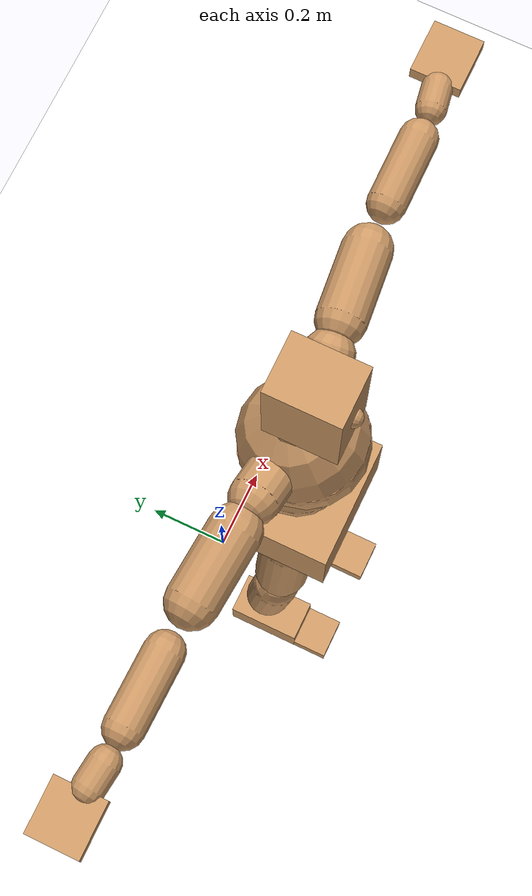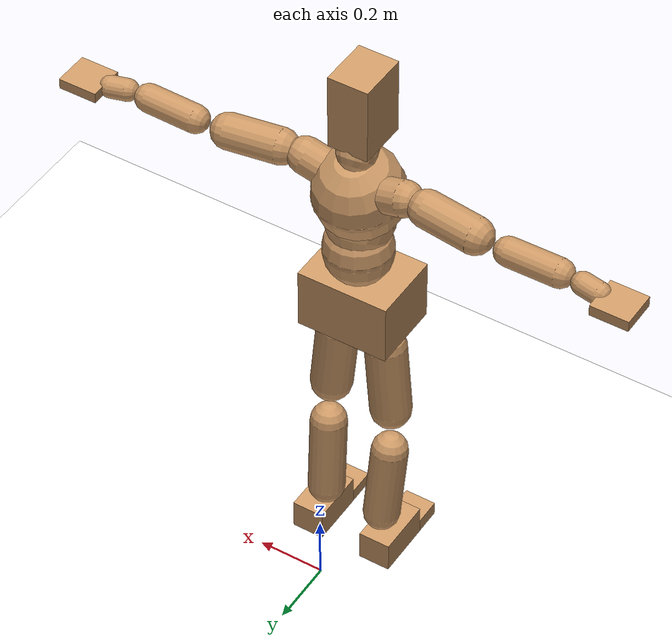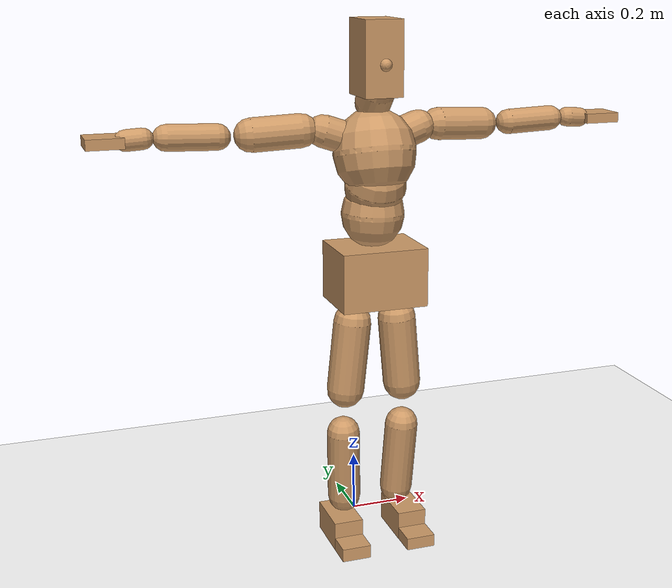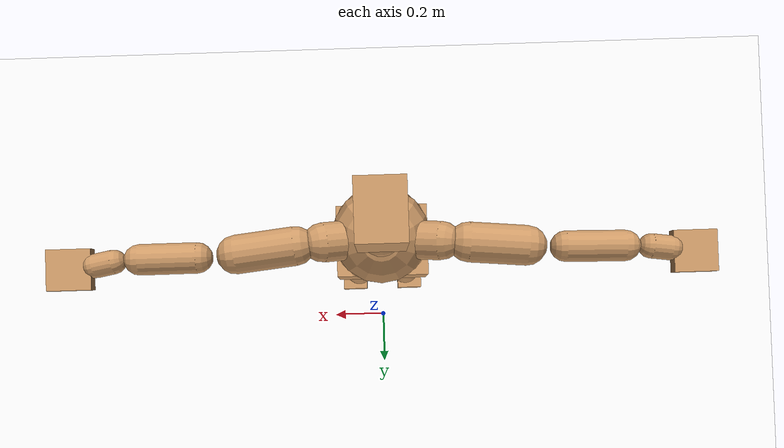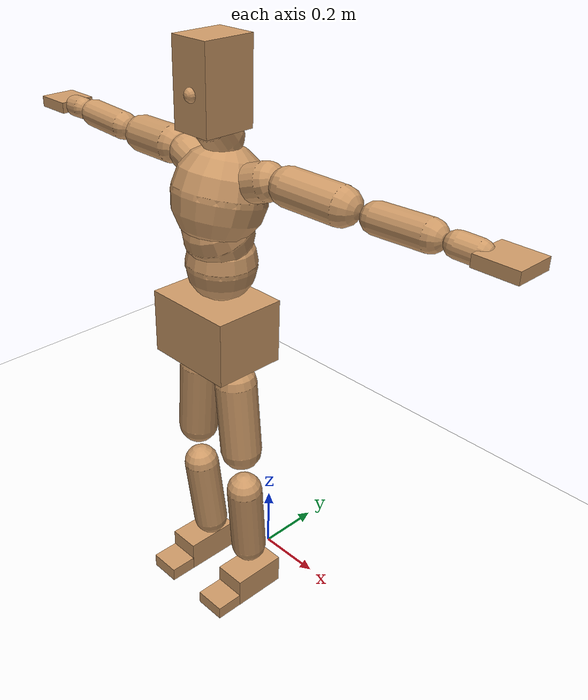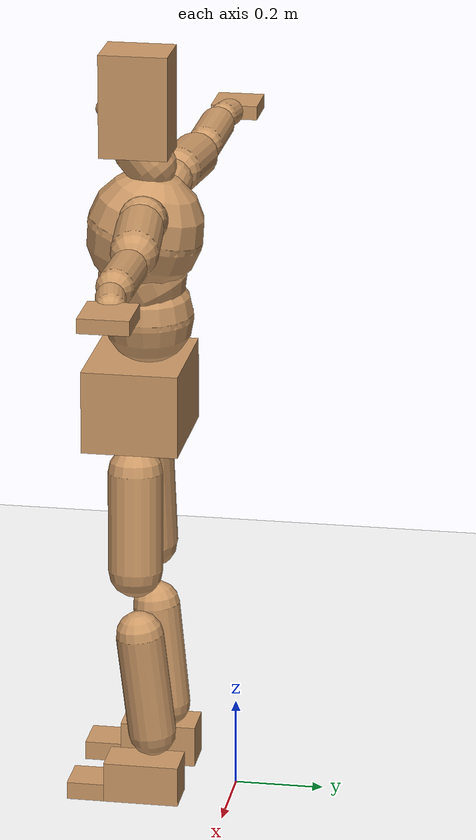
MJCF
<mujoco model="humanoid">
  <option integrator="implicitfast" />

  <visual>
    <global offwidth="1280" offheight="960" />
    <headlight active="1" ambient="0.34 0.34 0.34" diffuse="0.5 0.5 0.5" />
  </visual>

  <default>
    <joint damping="2" stiffness="2" armature="0.01" limited="true" solimplimit="0 .99 .01" />
    <geom condim="1" friction="0.7 0.005 0.0001" solimp=".99 .99 .003" solref="0.015 1" margin="0.001" rgba="0.8 0.6 .4 1" />
    <default class="smplcontact">
      <geom condim="3" friction="1. 0.005 0.0001" solref="0.015 1" solimp="0.98 0.98 0.001" priority="1" />
    </default>
    <default class="stiff_medium">
      <joint stiffness="10" />
    </default>
    <default class="stiff_medium_higher">
      <joint stiffness="50" />
    </default>
    <default class="stiff_high">
      <joint stiffness="100" />
    </default>
  </default>

  <asset>
    <texture type="skybox" builtin="gradient" rgb1="0.99 0.99 0.99" rgb2="0.608 0.828 0.892" width="100" />
    <texture builtin="flat" height="1278" mark="cross" markrgb="1 1 1" name="texgeom" random="0.01" rgb1="0.8 0.6 0.4" rgb2="0.8 0.6 0.4" type="cube" width="127" />
    <texture name="texplane" type="2d" builtin="checker" markrgb="1 1 1" rgb1="0.756 0.772 0.76" rgb2="0.6 0.6 0.6" width="100" height="100" />
    <material name="MatPlane" reflectance="0.5" texture="texplane" texrepeat="1 1" texuniform="true" />
    <material name="geom" texture="texgeom" texuniform="true" />
  </asset>

  <worldbody>
    <light name="tracking_light" pos="0 0 7" dir="0 0 -1" directional="true" cutoff="100" exponent="1" diffuse="1 1 1" specular="0.1 0.1 0.1" mode="trackcom" />
    <camera name="back" pos="0 3 2.4" xyaxes="-1 0 0 0 -1 2" mode="trackcom" />
    <camera name="side" pos="-3 0 2.4" xyaxes="0 -1 0 1 0 2" mode="trackcom" />
    <camera name="front_side" pos="-2.8 -2.8 0.8" xyaxes="0.5 -0.5 0 0.1 0.1 1" mode="trackcom" />
    <geom condim="3" name="floor" pos="0 0 0" rgba="1 1 1 1" size="100 100 .2" type="plane" material="MatPlane" />
    <body name="Pelvis" pos="-0.0018 -0.2233 0.9367" euler="90 0 0">
      <site name="Pelvis" size="0.01" />
      <freejoint name="Pelvis" />
      <geom type="box" pos="-0.0000 -0.0121 -0.0055" size="0.13897 0.09386 0.1079" quat="1.0000 0.0000 0.0000 0.0000" density="3165.830099" name="Pelvis" />
      <body name="L_Hip" pos="0.0695 -0.0914 -0.0068">
        <joint name="L_Hip_x" type="hinge" pos="0 0 0" axis="1 0 0" stiffness="10.0" range="-160.0 22.92" class="stiff_medium" damping="15.0" armature="0.01"/>
        <joint name="L_Hip_y" type="hinge" pos="0 0 0" axis="0 1 0" stiffness="10.0" range="-70.0 70.0" class="stiff_medium" damping="10.000000000000004" armature="0.010000000000000009"/>
        <joint name="L_Hip_z" type="hinge" pos="0 0 0" axis="0 0 1" stiffness="10.0" range="-28.65 90.0" class="stiff_medium" damping="9.999999999999998" armature="0.009999999999999998"/>
        <geom type="capsule" density="2040.816327" fromto="0.0069 -0.075 -0.0009 0.0274 -0.3002 -0.0036" size="0.0615" name="L_Hip" />
        <body name="L_Knee" pos="0.0343 -0.3752 -0.0045">
          <joint name="L_Knee_x" type="hinge" pos="0 0 0" axis="1 0 0" range="-5.16 171.89" damping="8.000000000000002" armature="0.010000000000000005" stiffness="2.0"/>
          <joint name="L_Knee_y" type="hinge" pos="0 0 0" axis="0 1 0" range="-4.58 6.88" damping="8.000000000000002" armature="0.010000000000000005" stiffness="2.0"/>
          <joint name="L_Knee_z" type="hinge" pos="0 0 0" axis="0 0 1" range="-6.88 4.58" damping="8.000000000000004" armature="0.010000000000000009" stiffness="2.0"/>
          <geom type="capsule" density="1234.567901" fromto="-0.0027 -0.0796 -0.0087 -0.0109 -0.3184 -0.035" size="0.0541" name="L_Knee" />
          <body name="L_Ankle" pos="-0.0136 -0.398 -0.0437">
            <joint name="L_Ankle_x" type="hinge" pos="0 0 0" axis="1 0 0" range="-45.84 45.84" class="stiff_medium" damping="6.000000000000011" armature="0.010000000000000035" stiffness="10.0"/>
            <joint name="L_Ankle_y" type="hinge" pos="0 0 0" axis="0 1 0" range="-74.48 22.92" class="stiff_medium" damping="3.0" armature="0.010000000000000002" stiffness="10.0"/>
            <joint name="L_Ankle_z" type="hinge" pos="0 0 0" axis="0 0 1" range="-4.58 4.58" class="stiff_medium" damping="6.000000000000028" armature="0.010000000000000094" stiffness="10.0"/>
            <geom type="box" pos="0.0233 -0.0239 0.0242" size="0.0483 0.0464 0.085" quat="1.0000 0.0000 0.0000 0.0000" density="449.071558" name="L_Ankle" class="smplcontact" />
            <body name="L_Toe" pos="0.0264 -0.0558 0.1193">
              <joint name="L_Toe_x" type="hinge" pos="0 0 0" axis="1 0 0" range="-91.67 22.92" armature="0.009999999999999324" damping="1.9999999999999323" stiffness="2.0"/>
              <joint name="L_Toe_y" type="hinge" pos="0 0 0" axis="0 1 0" range="-4.58 4.58" armature="0.010000000000000024" damping="2.000000000000002" stiffness="2.0"/>
              <joint name="L_Toe_z" type="hinge" pos="0 0 0" axis="0 0 1" range="-4.58 4.58" armature="0.010000000000000222" damping="2.000000000000022" stiffness="2.0"/>
              <geom type="box" pos="-0.003 0.0055 0.0248" size="0.0478 0.02 0.0496" quat="1.0000 0.0000 0.0000 0.0000" density="423.206892" name="L_Toe" class="smplcontact" />
            </body>
          </body>
        </body>
      </body>
      <body name="R_Hip" pos="-0.0677 -0.0905 -0.0043">
        <joint name="R_Hip_x" type="hinge" pos="0 0 0" axis="1 0 0" stiffness="10.0" range="-160.0 22.92" class="stiff_medium" damping="15.0" armature="0.01"/>
        <joint name="R_Hip_y" type="hinge" pos="0 0 0" axis="0 1 0" stiffness="10.0" range="-70.0 70.0" class="stiff_medium" damping="10.000000000000004" armature="0.010000000000000009"/>
        <joint name="R_Hip_z" type="hinge" pos="0 0 0" axis="0 0 1" stiffness="10.0" range="-90.0 28.65" class="stiff_medium" damping="9.999999999999998" armature="0.009999999999999998"/>
        <geom type="capsule" density="2040.816327" fromto="-0.0077 -0.0765 -0.0018 -0.0306 -0.3061 -0.0071" size="0.0606" name="R_Hip" />
        <body name="R_Knee" pos="-0.0383 -0.3826 -0.0089">
          <joint name="R_Knee_x" type="hinge" pos="0 0 0" axis="1 0 0" range="-5.16 171.89" damping="8.000000000000002" armature="0.010000000000000005" stiffness="2.0"/>
          <joint name="R_Knee_y" type="hinge" pos="0 0 0" axis="0 1 0" range="-6.88 4.58" damping="8.000000000000002" armature="0.010000000000000005" stiffness="2.0"/>
          <joint name="R_Knee_z" type="hinge" pos="0 0 0" axis="0 0 1" range="-4.58 6.88" damping="8.000000000000004" armature="0.010000000000000009" stiffness="2.0"/>
          <geom type="capsule" density="1234.567901" fromto="0.0032 -0.0797 -0.0085 0.0126 -0.3187 -0.0338" size="0.0541" name="R_Knee" />
          <body name="R_Ankle" pos="0.0158 -0.3984 -0.0423">
            <joint name="R_Ankle_x" type="hinge" pos="0 0 0" axis="1 0 0" range="-45.84 45.84" class="stiff_medium" damping="6.000000000000011" armature="0.010000000000000035" stiffness="10.0"/>
            <joint name="R_Ankle_y" type="hinge" pos="0 0 0" axis="0 1 0" range="-22.92 74.48" class="stiff_medium" damping="3.0" armature="0.010000000000000002" stiffness="10.0"/>
            <joint name="R_Ankle_z" type="hinge" pos="0 0 0" axis="0 0 1" range="-4.58 4.58" class="stiff_medium" damping="6.000000000000028" armature="0.010000000000000094" stiffness="10.0"/>
            <geom type="box" pos="-0.0212 -0.0174 0.0256" size="0.0483 0.0478 0.0865" quat="1.0000 0.0000 0.0000 0.0000" density="434.700981" name="R_Ankle" class="smplcontact" />
            <body name="R_Toe" pos="-0.0254 -0.0481 0.1233">
              <joint name="R_Toe_x" type="hinge" pos="0 0 0" axis="1 0 0" range="-91.67 22.92" armature="0.009999999999999324" damping="1.9999999999999323" stiffness="2.0"/>
              <joint name="R_Toe_y" type="hinge" pos="0 0 0" axis="0 1 0" range="-4.58 4.58" armature="0.010000000000000024" damping="2.000000000000002" stiffness="2.0"/>
              <joint name="R_Toe_z" type="hinge" pos="0 0 0" axis="0 0 1" range="-4.58 4.58" armature="0.010000000000000222" damping="2.000000000000022" stiffness="2.0"/>
              <geom type="box" pos="0.0042 0.0045 0.0227" size="0.0479 0.0216 0.0493" quat="1.0000 0.0000 0.0000 0.0000" density="407.384095" name="R_Toe" class="smplcontact" />
            </body>
          </body>
        </body>
      </body>
      <body name="Torso" pos="-0.0025 0.109 -0.0267">
        <joint name="Torso_x" type="hinge" pos="0 0 0" axis="1 0 0" range="-25.78 57.3" class="stiff_medium" damping="21.04139072920624" armature="0.013546170695719959" stiffness="14.526126444444445"/>
        <joint name="Torso_y" type="hinge" pos="0 0 0" axis="0 1 0" range="-57.3 57.3" class="stiff_high" damping="25.4254694835325" armature="0.010927821240683944" stiffness="147.89190000000002"/>
        <joint name="Torso_z" type="hinge" pos="0 0 0" axis="0 0 1" range="-34.38 34.38" class="stiff_high" damping="27.77419728380355" armature="0.012401348580556344" stiffness="155.5084976744186"/>
        <geom type="capsule" density="2040.816327" fromto="0.0025 0.0608 0.0005 0.003 0.0743 0.0006" size="0.09997" name="Torso" />
        <body name="Spine" pos="0.0055 0.1352 0.0011">
          <joint name="Spine_x" type="hinge" pos="0 0 0" axis="1 0 0" stiffness="13.740005111111113" range="-25.78 57.3" class="stiff_medium" damping="19.75706164138287" armature="0.012626276548575833"/>
          <joint name="Spine_y" type="hinge" pos="0 0 0" axis="0 1 0" stiffness="13.361457142857143" range="-57.3 57.3" class="stiff_high" damping="9.5944589816284" armature="0.010764830204091984"/>
          <joint name="Spine_z" type="hinge" pos="0 0 0" axis="0 0 1" stiffness="26.968044651162792" range="-34.38 34.38" class="stiff_high" damping="14.771952809324663" armature="0.011238125252781872"/>
          <geom type="capsule" density="2040.816327" fromto="0.0007 0.0238 0.0114 0.0008 0.0291 0.014" size="0.09815" name="Spine" />
          <body name="Chest" pos="0.0015 0.0529 0.0254">
            <joint name="Chest_x" type="hinge" pos="0 0 0" axis="1 0 0" stiffness="12.685081627906978" range="-25.78 57.3" class="stiff_medium" damping="18.658385545554474" armature="0.012197542536919513"/>
            <joint name="Chest_y" type="hinge" pos="0 0 0" axis="0 1 0" stiffness="12.297906764705882" range="-57.3 57.3" class="stiff_high" damping="9.149691371047325" armature="0.010636572877192718"/>
            <joint name="Chest_z" type="hinge" pos="0 0 0" axis="0 0 1" stiffness="26.08025906976744" range="-34.38 34.38" class="stiff_high" damping="14.257351470309054" armature="0.010825134827294596"/>
            <geom type="capsule" density="2040.816327" fromto="-0.0009 0.0682 -0.0173 -0.001 0.0833 -0.0212" size="0.13026" name="Chest" />
            <body name="Neck" pos="-0.0028 0.2139 -0.0429">
              <joint name="Neck_x" type="hinge" pos="0 0 0" axis="1 0 0" range="-28.65 57.3" class="stiff_medium_higher" damping="10.438437836393051" armature="0.01020886394393712" stiffness="53.365871590909094"/>
              <joint name="Neck_y" type="hinge" pos="0 0 0" axis="0 1 0" range="-40.11 40.11" class="stiff_medium_higher" damping="10.727292447507459" armature="0.010866808322038901" stiffness="52.94783888888889"/>
              <joint name="Neck_z" type="hinge" pos="0 0 0" axis="0 0 1" range="-40.11 40.11" class="stiff_medium_higher" damping="10.208710391894712" armature="0.010177241271499453" stiffness="51.20138409090911"/>
              <geom type="capsule" density="1000" fromto="0.001 0.013 0.0103 0.0041 0.052 0.0411" size="0.05668" name="Neck" />
              <body name="Head" pos="0.0052 0.065 0.0513">
                <joint name="Head_x" type="hinge" pos="0 0 0" axis="1 0 0" range="-28.65 57.3" class="stiff_medium_higher" damping="2.000000000000003" armature="0.010000000000000031" stiffness="50.0"/>
                <joint name="Head_y" type="hinge" pos="0 0 0" axis="0 1 0" range="-40.11 40.11" class="stiff_medium_higher" damping="1.9999999999999998" armature="0.009999999999999998" stiffness="50.0"/>
                <joint name="Head_z" type="hinge" pos="0 0 0" axis="0 0 1" range="-40.11 40.11" class="stiff_medium_higher" damping="2.0000000000000018" armature="0.010000000000000018" stiffness="50.0"/>
                <geom type="box" pos="-0.0042 0.0876 -0.0116" size="0.0606 0.1154 0.076" quat="1.0000 0.0000 0.0000 0.0000" density="1018.069894" name="Head" />
                <geom type="capsule" name="nose" size="0.02 0.01" pos="0 0.07 0.05" quat="1 0 0 0" mass="0" contype="0" conaffinity="0" />
              </body>
            </body>
            <body name="L_Thorax" pos="0.0788 0.1217 -0.0341">
              <joint name="L_Thorax_x" type="hinge" pos="0 0 0" axis="1 0 0" range="-10.89 4.58" class="stiff_medium_higher" damping="20.00000000000011" armature="0.010000000000000111" stiffness="50.0"/>
              <joint name="L_Thorax_y" type="hinge" pos="0 0 0" axis="0 1 0" range="-28.65 17.19" class="stiff_medium_higher" damping="20.0" armature="0.010000000000000002" stiffness="50.0"/>
              <joint name="L_Thorax_z" type="hinge" pos="0 0 0" axis="0 0 1" range="-31.51 40.11" class="stiff_medium_higher" damping="20.0" armature="0.01" stiffness="50.0"/>
              <geom type="capsule" density="1000" fromto="0.0182 0.0061 -0.0018 0.0728 0.0244 -0.0071" size="0.0521" name="L_Thorax" />
              <body name="L_Shoulder" pos="0.091 0.0305 -0.0089">
                <joint name="L_Shoulder_x" type="hinge" pos="0 0 0" axis="1 0 0" range="-97.4 97.4" class="stiff_medium" damping="6.000000000000077" armature="0.010000000000000257" stiffness="10.0"/>
                <joint name="L_Shoulder_y" type="hinge" pos="0 0 0" axis="0 1 0" range="-108.86 80.21" class="stiff_medium" damping="6.0" armature="0.01" stiffness="10.0"/>
                <joint name="L_Shoulder_z" type="hinge" pos="0 0 0" axis="0 0 1" range="-97.4 85.94" class="stiff_medium" damping="6.000000000000002" armature="0.010000000000000005" stiffness="10.0"/>
                <geom type="capsule" density="1000" fromto="0.0519 -0.0026 -0.0055 0.2077 -0.0102 -0.022" size="0.0517" name="L_Shoulder" />
                <body name="L_Elbow" pos="0.2596 -0.0128 -0.0275">
                  <joint name="L_Elbow_x" type="hinge" pos="0 0 0" axis="1 0 0" range="-17.19 4.58" damping="4.999999999999979" armature="0.009999999999999917" stiffness="2.0"/>
                  <joint name="L_Elbow_y" type="hinge" pos="0 0 0" axis="0 1 0" range="-180.0 17.19" damping="5.000000000000005" armature="0.010000000000000023" stiffness="2.0"/>
                  <joint name="L_Elbow_z" type="hinge" pos="0 0 0" axis="0 0 1" range="-100.84 4.58" damping="5.0" armature="0.010000000000000002" stiffness="2.0"/>
                  <geom type="capsule" density="1000" fromto="0.0498 0.0018 -0.0002 0.1994 0.0072 -0.0009" size="0.0405" name="L_Elbow" />
                  <body name="L_Wrist" pos="0.2492 0.009 -0.0012">
                    <joint name="L_Wrist_x" type="hinge" pos="0 0 0" axis="1 0 0" range="-180.0 22.92" armature="0.009999999999999681" damping="1.999999999999968" stiffness="2.0"/>
                    <joint name="L_Wrist_y" type="hinge" pos="0 0 0" axis="0 1 0" range="-17.19 17.19" armature="0.009999999999999924" damping="1.9999999999999925" stiffness="2.0"/>
                    <joint name="L_Wrist_z" type="hinge" pos="0 0 0" axis="0 0 1" range="-22.92 22.92" armature="0.009999999999999915" damping="1.9999999999999916" stiffness="2.0"/>
                    <geom type="capsule" density="1000" fromto="0.0168 -0.0016 -0.003 0.0672 -0.0065 -0.012" size="0.0318" name="L_Wrist" class="smplcontact" />
                    <body name="L_Hand" pos="0.084 -0.0082 -0.0149">
                      <joint name="L_Hand_x" type="hinge" pos="0 0 0" axis="1 0 0" range="-17.19 17.19" armature="0.009999999999999863" damping="1.9999999999999862" stiffness="2.0"/>
                      <joint name="L_Hand_y" type="hinge" pos="0 0 0" axis="0 1 0" range="-51.57 51.57" armature="0.010000000000000217" damping="2.0000000000000218" stiffness="2.0"/>
                      <joint name="L_Hand_z" type="hinge" pos="0 0 0" axis="0 0 1" range="-91.67 91.67" armature="0.010000000000000262" damping="2.000000000000026" stiffness="2.0"/>
                      <geom type="box" pos="0.0493 0.001 -0.0058" size="0.0585 0.0158 0.0538" quat="1.0000 0.0000 0.0000 0.0000" density="400.552564" name="L_Hand" class="smplcontact" />
                    </body>
                  </body>
                </body>
              </body>
            </body>
            <body name="R_Thorax" pos="-0.0818 0.1188 -0.0386">
              <joint name="R_Thorax_x" type="hinge" pos="0 0 0" axis="1 0 0" range="-10.89 4.58" class="stiff_medium_higher" damping="20.00000000000011" armature="0.010000000000000111" stiffness="50.0"/>
              <joint name="R_Thorax_y" type="hinge" pos="0 0 0" axis="0 1 0" range="-17.19 28.65" class="stiff_medium_higher" damping="20.0" armature="0.010000000000000002" stiffness="50.0"/>
              <joint name="R_Thorax_z" type="hinge" pos="0 0 0" axis="0 0 1" range="-40.11 31.51" class="stiff_medium_higher" damping="20.0" armature="0.01" stiffness="50.0"/>
              <geom type="capsule" density="1000" fromto="-0.0192 0.0065 -0.0018 -0.0768 0.026 -0.0073" size="0.0511" name="R_Thorax" />
              <body name="R_Shoulder" pos="-0.096 0.0326 -0.0091">
                <joint name="R_Shoulder_x" type="hinge" pos="0 0 0" axis="1 0 0" range="-97.4 97.4" class="stiff_medium" damping="6.000000000000077" armature="0.010000000000000257" stiffness="10.0"/>
                <joint name="R_Shoulder_y" type="hinge" pos="0 0 0" axis="0 1 0" range="-80.21 108.86" class="stiff_medium" damping="6.0" armature="0.01" stiffness="10.0"/>
                <joint name="R_Shoulder_z" type="hinge" pos="0 0 0" axis="0 0 1" range="-85.94 97.4" class="stiff_medium" damping="6.000000000000002" armature="0.010000000000000005" stiffness="10.0"/>
                <geom type="capsule" density="1000" fromto="-0.0507 -0.0027 -0.0043 -0.203 -0.0107 -0.0171" size="0.0531" name="R_Shoulder" />
                <body name="R_Elbow" pos="-0.2537 -0.0133 -0.0214">
                  <joint name="R_Elbow_x" type="hinge" pos="0 0 0" axis="1 0 0" range="-17.19 4.58" damping="4.999999999999979" armature="0.009999999999999917" stiffness="2.0"/>
                  <joint name="R_Elbow_y" type="hinge" pos="0 0 0" axis="0 1 0" range="-17.19 180.0" damping="5.000000000000005" armature="0.010000000000000023" stiffness="2.0"/>
                  <joint name="R_Elbow_z" type="hinge" pos="0 0 0" axis="0 0 1" range="-4.58 100.84" damping="5.0" armature="0.010000000000000002" stiffness="2.0"/>
                  <geom type="capsule" density="1000" fromto="-0.0511 0.0016 -0.0011 -0.2042 0.0062 -0.0044" size="0.0408" name="R_Elbow" />
                  <body name="R_Wrist" pos="-0.2553 0.0078 -0.0056">
                    <joint name="R_Wrist_x" type="hinge" pos="0 0 0" axis="1 0 0" range="-180.0 22.92" armature="0.009999999999999681" damping="1.999999999999968" stiffness="2.0"/>
                    <joint name="R_Wrist_y" type="hinge" pos="0 0 0" axis="0 1 0" range="-17.19 17.19" armature="0.009999999999999924" damping="1.9999999999999925" stiffness="2.0"/>
                    <joint name="R_Wrist_z" type="hinge" pos="0 0 0" axis="0 0 1" range="-22.92 22.92" armature="0.009999999999999915" damping="1.9999999999999916" stiffness="2.0"/>
                    <geom type="capsule" density="1000" fromto="-0.0169 -0.0012 -0.0021 -0.0677 -0.0049 -0.0083" size="0.0326" name="R_Wrist" class="smplcontact" />
                    <body name="R_Hand" pos="-0.0846 -0.0061 -0.0103">
                      <joint name="R_Hand_x" type="hinge" pos="0 0 0" axis="1 0 0" range="-17.19 17.19" armature="0.009999999999999863" damping="1.9999999999999862" stiffness="2.0"/>
                      <joint name="R_Hand_y" type="hinge" pos="0 0 0" axis="0 1 0" range="-51.57 51.57" armature="0.010000000000000217" damping="2.0000000000000218" stiffness="2.0"/>
                      <joint name="R_Hand_z" type="hinge" pos="0 0 0" axis="0 0 1" range="-91.67 91.67" armature="0.010000000000000262" damping="2.000000000000026" stiffness="2.0"/>
                      <geom type="box" pos="-0.0462 -0.0009 -0.0079" size="0.0569 0.0164 0.0546" quat="1.0000 0.0000 0.0000 0.0000" density="403.679611" name="R_Hand" class="smplcontact" />
                    </body>
                  </body>
                </body>
              </body>
            </body>
          </body>
        </body>
      </body>
    </body>
  </worldbody>
  <actuator>
    <general name="L_Hip_x" joint="L_Hip_x" biastype="affine" gainprm="287.33006409732246" biasprm="-215.3247604770444 -180.0 -2.0" ctrllimited="true" ctrlrange="-1 1" forcerange="-360.0 360.0" />
    <general name="L_Hip_y" joint="L_Hip_y" biastype="affine" gainprm="219.9114857512855" biasprm="0.0 -180.0 -2.000000000000001" ctrllimited="true" ctrlrange="-1 1" forcerange="-360.0 360.0" />
    <general name="L_Hip_z" joint="L_Hip_z" biastype="affine" gainprm="186.3749841742145" biasprm="96.3683546488669 -180.0 -1.9999999999999998" ctrllimited="true" ctrlrange="-1 1" forcerange="-360.0 360.0" />
    <general name="L_Knee_x" joint="L_Knee_x" biastype="affine" gainprm="278.10948965903646" biasprm="261.8988715665131 -180.0 -2.0000000000000004" ctrllimited="true" ctrlrange="-1 1" forcerange="-360.0 360.0" />
    <general name="L_Knee_y" joint="L_Knee_y" biastype="affine" gainprm="18.001325905069514" biasprm="3.612831551628262 -180.0 -2.0000000000000004" ctrllimited="true" ctrlrange="-1 1" forcerange="-360.0 360.0" />
    <general name="L_Knee_z" joint="L_Knee_z" biastype="affine" gainprm="18.001325905069514" biasprm="-3.612831551628262 -180.0 -2.000000000000001" ctrllimited="true" ctrlrange="-1 1" forcerange="-360.0 360.0" />
    <general name="L_Ankle_x" joint="L_Ankle_x" biastype="affine" gainprm="72.00530362027807" biasprm="0.0 -90.0 -2.0000000000000036" ctrllimited="true" ctrlrange="-1 1" forcerange="-180.0 180.0" />
    <general name="L_Ankle_y" joint="L_Ankle_y" biastype="affine" gainprm="76.49778111491148" biasprm="-40.49512930477244 -90.0 -2.0" ctrllimited="true" ctrlrange="-1 1" forcerange="-180.0 180.0" />
    <general name="L_Ankle_z" joint="L_Ankle_z" biastype="affine" gainprm="7.1942471767206255" biasprm="0.0 -90.0 -2.0000000000000093" ctrllimited="true" ctrlrange="-1 1" forcerange="-180.0 180.0" />
    <general name="L_Toe_x" joint="L_Toe_x" biastype="affine" gainprm="71.99902043497087" biasprm="-43.19689898685965 -72.0 -0.799999999999973" ctrllimited="true" ctrlrange="-1 1" forcerange="-144.0 144.0" />
    <general name="L_Toe_y" joint="L_Toe_y" biastype="affine" gainprm="5.755397741376501" biasprm="0.0 -72.0 -0.8000000000000009" ctrllimited="true" ctrlrange="-1 1" forcerange="-144.0 144.0" />
    <general name="L_Toe_z" joint="L_Toe_z" biastype="affine" gainprm="5.755397741376501" biasprm="0.0 -72.0 -0.8000000000000089" ctrllimited="true" ctrlrange="-1 1" forcerange="-144.0 144.0" />
    <general name="R_Hip_x" joint="R_Hip_x" biastype="affine" gainprm="287.33006409732246" biasprm="-215.3247604770444 -180.0 -2.0" ctrllimited="true" ctrlrange="-1 1" forcerange="-360.0 360.0" />
    <general name="R_Hip_y" joint="R_Hip_y" biastype="affine" gainprm="219.9114857512855" biasprm="0.0 -180.0 -2.000000000000001" ctrllimited="true" ctrlrange="-1 1" forcerange="-360.0 360.0" />
    <general name="R_Hip_z" joint="R_Hip_z" biastype="affine" gainprm="186.3749841742145" biasprm="-96.3683546488669 -180.0 -1.9999999999999998" ctrllimited="true" ctrlrange="-1 1" forcerange="-360.0 360.0" />
    <general name="R_Knee_x" joint="R_Knee_x" biastype="affine" gainprm="278.10948965903646" biasprm="261.8988715665131 -180.0 -2.0000000000000004" ctrllimited="true" ctrlrange="-1 1" forcerange="-360.0 360.0" />
    <general name="R_Knee_y" joint="R_Knee_y" biastype="affine" gainprm="18.001325905069514" biasprm="-3.612831551628262 -180.0 -2.0000000000000004" ctrllimited="true" ctrlrange="-1 1" forcerange="-360.0 360.0" />
    <general name="R_Knee_z" joint="R_Knee_z" biastype="affine" gainprm="18.001325905069514" biasprm="3.612831551628262 -180.0 -2.000000000000001" ctrllimited="true" ctrlrange="-1 1" forcerange="-360.0 360.0" />
    <general name="R_Ankle_x" joint="R_Ankle_x" biastype="affine" gainprm="72.00530362027807" biasprm="0.0 -90.0 -2.0000000000000036" ctrllimited="true" ctrlrange="-1 1" forcerange="-180.0 180.0" />
    <general name="R_Ankle_y" joint="R_Ankle_y" biastype="affine" gainprm="76.49778111491148" biasprm="40.49512930477244 -90.0 -2.0" ctrllimited="true" ctrlrange="-1 1" forcerange="-180.0 180.0" />
    <general name="R_Ankle_z" joint="R_Ankle_z" biastype="affine" gainprm="7.1942471767206255" biasprm="0.0 -90.0 -2.0000000000000093" ctrllimited="true" ctrlrange="-1 1" forcerange="-180.0 180.0" />
    <general name="R_Toe_x" joint="R_Toe_x" biastype="affine" gainprm="71.99902043497087" biasprm="-43.19689898685965 -72.0 -0.799999999999973" ctrllimited="true" ctrlrange="-1 1" forcerange="-144.0 144.0" />
    <general name="R_Toe_y" joint="R_Toe_y" biastype="affine" gainprm="5.755397741376501" biasprm="0.0 -72.0 -0.8000000000000009" ctrllimited="true" ctrlrange="-1 1" forcerange="-144.0 144.0" />
    <general name="R_Toe_z" joint="R_Toe_z" biastype="affine" gainprm="5.755397741376501" biasprm="0.0 -72.0 -0.8000000000000089" ctrllimited="true" ctrlrange="-1 1" forcerange="-144.0 144.0" />
    <general name="Torso_x" joint="Torso_x" biastype="affine" gainprm="252.75800666516236" biasprm="95.89470835442845 -348.6270346666667 -5.61103752778833" ctrllimited="true" ctrlrange="-1 1" forcerange="-522.940552 522.940552" />
    <general name="Torso_y" joint="Torso_y" biastype="affine" gainprm="354.9667054159934" biasprm="0.0 -354.94056 -5.0850938967065" ctrllimited="true" ctrlrange="-1 1" forcerange="-532.41084 532.41084" />
    <general name="Torso_z" joint="Torso_z" biastype="affine" gainprm="223.94873181159636" biasprm="0.0 -373.22039441860466 -5.55483945676071" ctrllimited="true" ctrlrange="-1 1" forcerange="-559.830591627907 559.830591627907" />
    <general name="Spine_x" joint="Spine_x" biastype="affine" gainprm="239.07931111131185" biasprm="90.70510214526418 -329.7601226666667 -5.268549771035431" ctrllimited="true" ctrlrange="-1 1" forcerange="-494.6401840000001 494.6401840000001" />
    <general name="Spine_y" joint="Spine_y" biastype="affine" gainprm="320.6985927935872" biasprm="0.0 -320.67497142857144 -4.7972294908142" ctrllimited="true" ctrlrange="-1 1" forcerange="-481.01245714285716 481.01245714285716" />
    <general name="Spine_z" joint="Spine_z" biastype="affine" gainprm="194.18422431521927" biasprm="0.0 -323.6165358139535 -4.923984269774888" ctrllimited="true" ctrlrange="-1 1" forcerange="-485.42480372093024 485.42480372093024" />
    <general name="Chest_x" joint="Chest_x" biastype="affine" gainprm="220.72339511273367" biasprm="83.74098957575065 -304.44195906976745 -4.975569478814526" ctrllimited="true" ctrlrange="-1 1" forcerange="-456.6629386046512 456.6629386046512" />
    <general name="Chest_y" joint="Chest_y" biastype="affine" gainprm="295.17150349550616" biasprm="0.0 -295.14976235294114 -4.5748456855236626" ctrllimited="true" ctrlrange="-1 1" forcerange="-442.7246435294117 442.7246435294117" />
    <general name="Chest_z" joint="Chest_z" biastype="affine" gainprm="187.79169728141153" biasprm="0.0 -312.9631088372093 -4.752450490103018" ctrllimited="true" ctrlrange="-1 1" forcerange="-469.4446632558139 469.4446632558139" />
    <general name="Neck_x" joint="Neck_x" biastype="affine" gainprm="28.819693401481356" biasprm="9.606564467160451 -38.42342754545455 -0.8350750269114441" ctrllimited="true" ctrlrange="-1 1" forcerange="-76.8468550909091 76.8468550909091" />
    <general name="Neck_y" joint="Neck_y" biastype="affine" gainprm="26.687676506624072" biasprm="0.0 -38.122444 -0.8581833958005968" ctrllimited="true" ctrlrange="-1 1" forcerange="-76.244888 76.244888" />
    <general name="Neck_z" joint="Neck_z" biastype="affine" gainprm="25.807398450710693" biasprm="0.0 -36.86499654545456 -0.8166968313515771" ctrllimited="true" ctrlrange="-1 1" forcerange="-73.72999309090912 73.72999309090912" />
    <general name="Head_x" joint="Head_x" biastype="affine" gainprm="18.001325905069514" biasprm="6.000441968356505 -24.0 -0.8000000000000013" ctrllimited="true" ctrlrange="-1 1" forcerange="-48.0 48.0" />
    <general name="Head_y" joint="Head_y" biastype="affine" gainprm="16.801237511398213" biasprm="0.0 -24.0 -0.7999999999999999" ctrllimited="true" ctrlrange="-1 1" forcerange="-48.0 48.0" />
    <general name="Head_z" joint="Head_z" biastype="affine" gainprm="16.801237511398213" biasprm="0.0 -24.0 -0.8000000000000007" ctrllimited="true" ctrlrange="-1 1" forcerange="-48.0 48.0" />
    <general name="L_Thorax_x" joint="L_Thorax_x" biastype="affine" gainprm="16.200146117011364" biasprm="-6.6078165480505335 -120.0 -1.600000000000009" ctrllimited="true" ctrlrange="-1 1" forcerange="-240.0 240.0" />
    <general name="L_Thorax_y" joint="L_Thorax_y" biastype="affine" gainprm="48.00353574685204" biasprm="-12.00088393671301 -120.0 -1.6" ctrllimited="true" ctrlrange="-1 1" forcerange="-240.0 240.0" />
    <general name="L_Thorax_z" joint="L_Thorax_z" biastype="affine" gainprm="75.00028861670033" biasprm="9.00589894029074 -120.0 -1.6" ctrllimited="true" ctrlrange="-1 1" forcerange="-240.0 240.0" />
    <general name="L_Shoulder_x" joint="L_Shoulder_x" biastype="affine" gainprm="81.5976331892389" biasprm="0.0 -48.0 -1.6000000000000207" ctrllimited="true" ctrlrange="-1 1" forcerange="-96.0 96.0" />
    <general name="L_Shoulder_y" joint="L_Shoulder_y" biastype="affine" gainprm="79.19745640189629" biasprm="-12.00088393671301 -48.0 -1.6" ctrllimited="true" ctrlrange="-1 1" forcerange="-96.0 96.0" />
    <general name="L_Shoulder_z" joint="L_Shoulder_z" biastype="affine" gainprm="76.79727961455369" biasprm="-4.800353574685214 -48.0 -1.6000000000000005" ctrllimited="true" ctrlrange="-1 1" forcerange="-96.0 96.0" />
    <general name="L_Elbow_x" joint="L_Elbow_x" biastype="affine" gainprm="13.67849441372996" biasprm="-7.923096672353461 -72.0 -0.7999999999999967" ctrllimited="true" ctrlrange="-1 1" forcerange="-144.0 144.0" />
    <general name="L_Elbow_y" joint="L_Elbow_y" biastype="affine" gainprm="123.89813107227425" biasprm="-102.29653998619085 -72.0 -0.8000000000000009" ctrllimited="true" ctrlrange="-1 1" forcerange="-144.0 144.0" />
    <general name="L_Elbow_z" joint="L_Elbow_z" biastype="affine" gainprm="66.23733950828719" biasprm="-60.4819417669107 -72.0 -0.8" ctrllimited="true" ctrlrange="-1 1" forcerange="-144.0 144.0" />
    <general name="L_Wrist_x" joint="L_Wrist_x" biastype="affine" gainprm="21.24973270888136" biasprm="-16.449379134196157 -12.0 -0.7999999999999873" ctrllimited="true" ctrlrange="-1 1" forcerange="-24.0 24.0" />
    <general name="L_Wrist_y" joint="L_Wrist_y" biastype="affine" gainprm="3.6002651810139037" biasprm="0.0 -12.0 -0.799999999999997" ctrllimited="true" ctrlrange="-1 1" forcerange="-24.0 24.0" />
    <general name="L_Wrist_z" joint="L_Wrist_z" biastype="affine" gainprm="4.800353574685205" biasprm="0.0 -12.0 -0.7999999999999967" ctrllimited="true" ctrlrange="-1 1" forcerange="-24.0 24.0" />
    <general name="L_Hand_x" joint="L_Hand_x" biastype="affine" gainprm="3.6002651810139037" biasprm="0.0 -12.0 -0.7999999999999945" ctrllimited="true" ctrlrange="-1 1" forcerange="-24.0 24.0" />
    <general name="L_Hand_y" joint="L_Hand_y" biastype="affine" gainprm="10.800795543041708" biasprm="0.0 -12.0 -0.8000000000000087" ctrllimited="true" ctrlrange="-1 1" forcerange="-24.0 24.0" />
    <general name="L_Hand_z" joint="L_Hand_z" biastype="affine" gainprm="19.199319903638422" biasprm="0.0 -12.0 -0.8000000000000105" ctrllimited="true" ctrlrange="-1 1" forcerange="-24.0 24.0" />
    <general name="R_Thorax_x" joint="R_Thorax_x" biastype="affine" gainprm="16.200146117011364" biasprm="-6.6078165480505335 -120.0 -1.600000000000009" ctrllimited="true" ctrlrange="-1 1" forcerange="-240.0 240.0" />
    <general name="R_Thorax_y" joint="R_Thorax_y" biastype="affine" gainprm="48.00353574685204" biasprm="12.000883936713002 -120.0 -1.6" ctrllimited="true" ctrlrange="-1 1" forcerange="-240.0 240.0" />
    <general name="R_Thorax_z" joint="R_Thorax_z" biastype="affine" gainprm="75.00028861670033" biasprm="-9.00589894029074 -120.0 -1.6" ctrllimited="true" ctrlrange="-1 1" forcerange="-240.0 240.0" />
    <general name="R_Shoulder_x" joint="R_Shoulder_x" biastype="affine" gainprm="81.5976331892389" biasprm="0.0 -48.0 -1.6000000000000207" ctrllimited="true" ctrlrange="-1 1" forcerange="-96.0 96.0" />
    <general name="R_Shoulder_y" joint="R_Shoulder_y" biastype="affine" gainprm="79.19745640189629" biasprm="12.00088393671301 -48.0 -1.6" ctrllimited="true" ctrlrange="-1 1" forcerange="-96.0 96.0" />
    <general name="R_Shoulder_z" joint="R_Shoulder_z" biastype="affine" gainprm="76.79727961455369" biasprm="4.800353574685204 -48.0 -1.6000000000000005" ctrllimited="true" ctrlrange="-1 1" forcerange="-96.0 96.0" />
    <general name="R_Elbow_x" joint="R_Elbow_x" biastype="affine" gainprm="13.67849441372996" biasprm="-7.923096672353461 -72.0 -0.7999999999999967" ctrllimited="true" ctrlrange="-1 1" forcerange="-144.0 144.0" />
    <general name="R_Elbow_y" joint="R_Elbow_y" biastype="affine" gainprm="123.89813107227425" biasprm="102.29653998619085 -72.0 -0.8000000000000009" ctrllimited="true" ctrlrange="-1 1" forcerange="-144.0 144.0" />
    <general name="R_Elbow_z" joint="R_Elbow_z" biastype="affine" gainprm="66.23733950828719" biasprm="60.481941766910694 -72.0 -0.8" ctrllimited="true" ctrlrange="-1 1" forcerange="-144.0 144.0" />
    <general name="R_Wrist_x" joint="R_Wrist_x" biastype="affine" gainprm="21.24973270888136" biasprm="-16.449379134196157 -12.0 -0.7999999999999873" ctrllimited="true" ctrlrange="-1 1" forcerange="-24.0 24.0" />
    <general name="R_Wrist_y" joint="R_Wrist_y" biastype="affine" gainprm="3.6002651810139037" biasprm="0.0 -12.0 -0.799999999999997" ctrllimited="true" ctrlrange="-1 1" forcerange="-24.0 24.0" />
    <general name="R_Wrist_z" joint="R_Wrist_z" biastype="affine" gainprm="4.800353574685205" biasprm="0.0 -12.0 -0.7999999999999967" ctrllimited="true" ctrlrange="-1 1" forcerange="-24.0 24.0" />
    <general name="R_Hand_x" joint="R_Hand_x" biastype="affine" gainprm="3.6002651810139037" biasprm="0.0 -12.0 -0.7999999999999945" ctrllimited="true" ctrlrange="-1 1" forcerange="-24.0 24.0" />
    <general name="R_Hand_y" joint="R_Hand_y" biastype="affine" gainprm="10.800795543041708" biasprm="0.0 -12.0 -0.8000000000000087" ctrllimited="true" ctrlrange="-1 1" forcerange="-24.0 24.0" />
    <general name="R_Hand_z" joint="R_Hand_z" biastype="affine" gainprm="19.199319903638422" biasprm="0.0 -12.0 -0.8000000000000105" ctrllimited="true" ctrlrange="-1 1" forcerange="-24.0 24.0" />
  </actuator>
  <contact>
    <exclude body1="Torso" body2="Chest" />
    <exclude body1="Head" body2="Chest" />
    <exclude body1="R_Knee" body2="R_Toe" />
    <exclude body1="R_Knee" body2="L_Ankle" />
    <exclude body1="R_Knee" body2="L_Toe" />
    <exclude body1="L_Knee" body2="L_Toe" />
    <exclude body1="L_Knee" body2="R_Ankle" />
    <exclude body1="L_Knee" body2="R_Toe" />
    <exclude body1="L_Shoulder" body2="Chest" />
    <exclude body1="R_Shoulder" body2="Chest" />
  </contact>
  <sensor>
    <framelinvel name="sensor_Pelvis_framelinvel" objtype="xbody" objname="Pelvis" />
    <framelinvel name="sensor_L_Hip_framelinvel" objtype="xbody" objname="L_Hip" />
    <framelinvel name="sensor_L_Knee_framelinvel" objtype="xbody" objname="L_Knee" />
    <framelinvel name="sensor_L_Ankle_framelinvel" objtype="xbody" objname="L_Ankle" />
    <framelinvel name="sensor_L_Toe_framelinvel" objtype="xbody" objname="L_Toe" />
    <framelinvel name="sensor_R_Hip_framelinvel" objtype="xbody" objname="R_Hip" />
    <framelinvel name="sensor_R_Knee_framelinvel" objtype="xbody" objname="R_Knee" />
    <framelinvel name="sensor_R_Ankle_framelinvel" objtype="xbody" objname="R_Ankle" />
    <framelinvel name="sensor_R_Toe_framelinvel" objtype="xbody" objname="R_Toe" />
    <framelinvel name="sensor_Torso_framelinvel" objtype="xbody" objname="Torso" />
    <framelinvel name="sensor_Spine_framelinvel" objtype="xbody" objname="Spine" />
    <framelinvel name="sensor_Chest_framelinvel" objtype="xbody" objname="Chest" />
    <framelinvel name="sensor_Neck_framelinvel" objtype="xbody" objname="Neck" />
    <framelinvel name="sensor_Head_framelinvel" objtype="xbody" objname="Head" />
    <framelinvel name="sensor_L_Thorax_framelinvel" objtype="xbody" objname="L_Thorax" />
    <framelinvel name="sensor_L_Shoulder_framelinvel" objtype="xbody" objname="L_Shoulder" />
    <framelinvel name="sensor_L_Elbow_framelinvel" objtype="xbody" objname="L_Elbow" />
    <framelinvel name="sensor_L_Wrist_framelinvel" objtype="xbody" objname="L_Wrist" />
    <framelinvel name="sensor_L_Hand_framelinvel" objtype="xbody" objname="L_Hand" />
    <framelinvel name="sensor_R_Thorax_framelinvel" objtype="xbody" objname="R_Thorax" />
    <framelinvel name="sensor_R_Shoulder_framelinvel" objtype="xbody" objname="R_Shoulder" />
    <framelinvel name="sensor_R_Elbow_framelinvel" objtype="xbody" objname="R_Elbow" />
    <framelinvel name="sensor_R_Wrist_framelinvel" objtype="xbody" objname="R_Wrist" />
    <framelinvel name="sensor_R_Hand_framelinvel" objtype="xbody" objname="R_Hand" />
    <frameangvel name="sensor_Pelvis_frameangvel" objtype="xbody" objname="Pelvis" />
    <frameangvel name="sensor_L_Hip_frameangvel" objtype="xbody" objname="L_Hip" />
    <frameangvel name="sensor_L_Knee_frameangvel" objtype="xbody" objname="L_Knee" />
    <frameangvel name="sensor_L_Ankle_frameangvel" objtype="xbody" objname="L_Ankle" />
    <frameangvel name="sensor_L_Toe_frameangvel" objtype="xbody" objname="L_Toe" />
    <frameangvel name="sensor_R_Hip_frameangvel" objtype="xbody" objname="R_Hip" />
    <frameangvel name="sensor_R_Knee_frameangvel" objtype="xbody" objname="R_Knee" />
    <frameangvel name="sensor_R_Ankle_frameangvel" objtype="xbody" objname="R_Ankle" />
    <frameangvel name="sensor_R_Toe_frameangvel" objtype="xbody" objname="R_Toe" />
    <frameangvel name="sensor_Torso_frameangvel" objtype="xbody" objname="Torso" />
    <frameangvel name="sensor_Spine_frameangvel" objtype="xbody" objname="Spine" />
    <frameangvel name="sensor_Chest_frameangvel" objtype="xbody" objname="Chest" />
    <frameangvel name="sensor_Neck_frameangvel" objtype="xbody" objname="Neck" />
    <frameangvel name="sensor_Head_frameangvel" objtype="xbody" objname="Head" />
    <frameangvel name="sensor_L_Thorax_frameangvel" objtype="xbody" objname="L_Thorax" />
    <frameangvel name="sensor_L_Shoulder_frameangvel" objtype="xbody" objname="L_Shoulder" />
    <frameangvel name="sensor_L_Elbow_frameangvel" objtype="xbody" objname="L_Elbow" />
    <frameangvel name="sensor_L_Wrist_frameangvel" objtype="xbody" objname="L_Wrist" />
    <frameangvel name="sensor_L_Hand_frameangvel" objtype="xbody" objname="L_Hand" />
    <frameangvel name="sensor_R_Thorax_frameangvel" objtype="xbody" objname="R_Thorax" />
    <frameangvel name="sensor_R_Shoulder_frameangvel" objtype="xbody" objname="R_Shoulder" />
    <frameangvel name="sensor_R_Elbow_frameangvel" objtype="xbody" objname="R_Elbow" />
    <frameangvel name="sensor_R_Wrist_frameangvel" objtype="xbody" objname="R_Wrist" />
    <frameangvel name="sensor_R_Hand_frameangvel" objtype="xbody" objname="R_Hand" />
    <subtreelinvel name="Chest_subtreelinvel" body="Chest" />
    <gyro name="Pelvis_gyro" site="Pelvis" />
  </sensor>
</mujoco>
